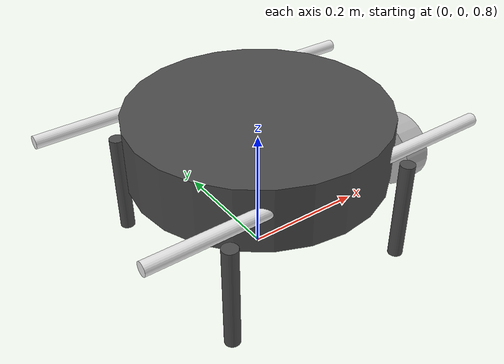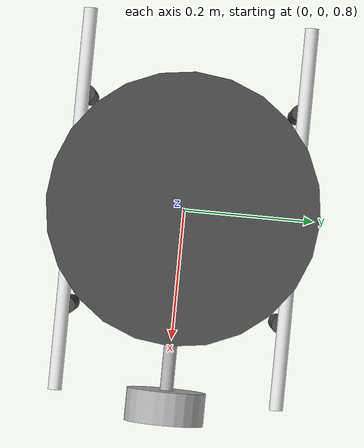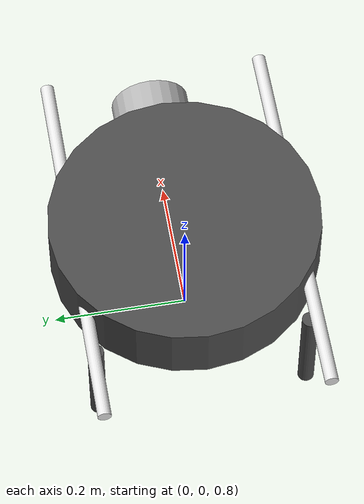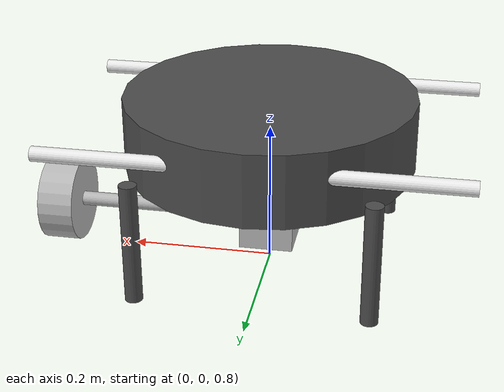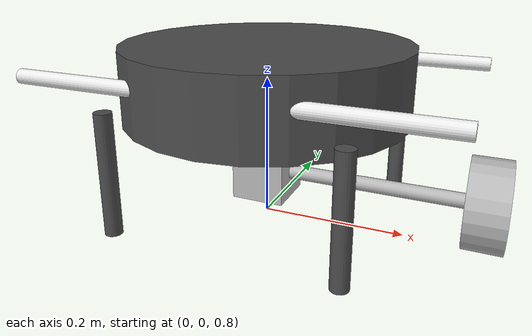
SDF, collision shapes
<?xml version="1.0" encoding="UTF-8"?>
<sdf version='1.9'>
  <model name='f450_base_model'>
    <pose>0 0 1 0 0 0</pose>
    <self_collide>false</self_collide>
    <static>false</static>
    <link name="base_link">
      <inertial>
        <mass>1.7</mass>
        <inertia>
          <ixx>0.01735416666666667</ixx>
          <ixy>0</ixy>
          <ixz>0</ixz>
          <iyy>0.01735416666666667</iyy>
          <iyz>0</iyz>
          <izz>0.034</izz>
        </inertia>
      </inertial>
      <gravity>true</gravity>
      <velocity_decay/>
      <collision name="base_link_collision">
        <pose>
          <x>0</x>
          <y>0</y>
          <z>-0.05</z>
          <roll>0</roll>
          <pitch>0</pitch>
          <yaw>0</yaw>
        </pose>
        <geometry>
          <cylinder>
            <length>0.1</length>
            <radius>0.2</radius>
          </cylinder>
        </geometry>
        <surface>
          <contact>
            <ode>
              <min_depth>0.001</min_depth>
              <max_vel>0.0</max_vel>
            </ode>
          </contact>
          <friction>
            <ode/>
          </friction>
        </surface>
      </collision>
      <visual name="lower_central_board_visual">
        <pose>0 0 -0.05 0 0 0</pose>
        <geometry>
          <mesh>
            <uri>model://f450_brush/meshes/dji_f450_central_bottom.dae</uri>
            <scale>1 1 1</scale>
          </mesh>
        </geometry>
        <material>
          <script>
            <name>Gazebo/DarkGrey</name>
            <uri>file://media/materials/scripts/gazebo.material</uri>
          </script>
        </material>
      </visual>
      <visual name="upper_central_board_visual">
        <pose>0 0 -0.012000000000000004 0 0 0</pose>
        <geometry>
          <mesh>
            <uri>model://f450_brush/meshes/dji_f450_central_top.dae</uri>
            <scale>1 1 1</scale>
          </mesh>
        </geometry>
        <material>
          <script>
            <name>Gazebo/DarkGrey</name>
            <uri>file://media/materials/scripts/gazebo.material</uri>
          </script>
        </material>
      </visual>
      <!-- Arms {-->
      <visual name="front_right_arm_visual">
        <pose>0.045961940777125586 -0.045961940777125586 -0.012000000000000004 0 0 -0.7853981633974483</pose>
        <geometry>
          <mesh>
            <uri>model://f450_brush/meshes/dji_f450_arm.dae</uri>
            <scale>1 1 1</scale>
          </mesh>
        </geometry>
        <material>
          <script>
            <name>Gazebo/White</name>
            <uri>file://media/materials/scripts/gazebo.material</uri>
          </script>
        </material>
      </visual>
      <visual name="front_left_arm_visual">
        <pose>0.045961940777125586 0.045961940777125586 -0.012000000000000004 0 0 0.7853981633974483</pose>
        <geometry>
          <mesh>
            <uri>model://f450_brush/meshes/dji_f450_arm.dae</uri>
            <scale>1 1 1</scale>
          </mesh>
        </geometry>
        <material>
          <script>
            <name>Gazebo/White</name>
            <uri>file://media/materials/scripts/gazebo.material</uri>
          </script>
        </material>
      </visual>
      <visual name="back_right_arm_visual">
        <pose>-0.045961940777125586 -0.045961940777125586 -0.012000000000000004 0 0 -2.356194490192345</pose>
        <geometry>
          <mesh>
            <uri>model://f450_brush/meshes/dji_f450_arm.dae</uri>
            <scale>1 1 1</scale>
          </mesh>
        </geometry>
        <material>
          <script>
            <name>Gazebo/Red</name>
            <uri>file://media/materials/scripts/gazebo.material</uri>
          </script>
        </material>
      </visual>
      <visual name="back_left_arm_visual">
        <pose>-0.045961940777125586 0.045961940777125586 -0.012000000000000004 0 0 2.356194490192345</pose>
        <geometry>
          <mesh>
            <uri>model://f450_brush/meshes/dji_f450_arm.dae</uri>
            <scale>1 1 1</scale>
          </mesh>
        </geometry>
        <material>
          <script>
            <name>Gazebo/Red</name>
            <uri>file://media/materials/scripts/gazebo.material</uri>
          </script>
        </material>
      </visual>
      <!-- Intel NUC {-->
      <visual name="NUC_visual">
        <pose>0 0 0.023 0 0 0</pose>
        <geometry>
          <mesh>
            <uri>model://f450_brush/meshes/dji_f450_nuc.dae</uri>
            <scale>0.001 0.001 0.001</scale>
          </mesh>
        </geometry>
        <material>
          <script>
            <name>Gazebo/DarkGrey</name>
            <uri>file://media/materials/scripts/gazebo.material</uri>
          </script>
        </material>
      </visual>
      <!-- Pixhawk {-->
      <visual name="pixhawk_visual">
        <pose>0 0 -0.0425 0 0 0</pose>
        <geometry>
          <mesh>
            <uri>model://f450_brush/meshes/pixhawk.dae</uri>
            <scale>1 1 1</scale>
          </mesh>
        </geometry>
        <material>
          <script>
            <name>Gazebo/DarkGrey</name>
            <uri>file://media/materials/scripts/gazebo.material</uri>
          </script>
        </material>
      </visual>
      <!-- Legs {-->
      <visual name="front_right_leg_visual">
        <pose>0.15754339084836277 -0.15754339084836277 -0.11000000000000001 0 0 2.356194490192345</pose>
        <geometry>
          <mesh>
            <uri>model://f450_brush/meshes/dji_f450_leg_170mm.dae</uri>
            <scale>0.001 0.001 0.001</scale>
          </mesh>
        </geometry>
        <material>
          <script>
            <name>Gazebo/White</name>
            <uri>file://media/materials/scripts/gazebo.material</uri>
          </script>
        </material>
      </visual>
      <collision name="front_right_leg_collision">
        <pose>0.15754339084836277 -0.15754339084836277 -0.11000000000000001 0 0 2.356194490192345</pose>
        <geometry>
          <cylinder>
            <length>0.17</length>
            <radius>0.012</radius>
          </cylinder>
        </geometry>
        <surface>
          <contact>
            <ode>
              <min_depth>0.001</min_depth>
              <max_vel>0.0</max_vel>
            </ode>
          </contact>
          <friction>
            <ode/>
          </friction>
        </surface>
      </collision>
      <visual name="front_left_leg_visual">
        <pose>0.15754339084836277 0.15754339084836277 -0.11000000000000001 0 0 -2.356194490192345</pose>
        <geometry>
          <mesh>
            <uri>model://f450_brush/meshes/dji_f450_leg_170mm.dae</uri>
            <scale>0.001 0.001 0.001</scale>
          </mesh>
        </geometry>
        <material>
          <script>
            <name>Gazebo/White</name>
            <uri>file://media/materials/scripts/gazebo.material</uri>
          </script>
        </material>
      </visual>
      <collision name="front_left_leg_collision">
        <pose>0.15754339084836277 0.15754339084836277 -0.11000000000000001 0 0 -2.356194490192345</pose>
        <geometry>
          <cylinder>
            <length>0.17</length>
            <radius>0.012</radius>
          </cylinder>
        </geometry>
        <surface>
          <contact>
            <ode>
              <min_depth>0.001</min_depth>
              <max_vel>0.0</max_vel>
            </ode>
          </contact>
          <friction>
            <ode/>
          </friction>
        </surface>
      </collision>
      <visual name="back_right_leg_visual">
        <pose>-0.15754339084836277 -0.15754339084836277 -0.11000000000000001 0 0 0.7853981633974483</pose>
        <geometry>
          <mesh>
            <uri>model://f450_brush/meshes/dji_f450_leg_170mm.dae</uri>
            <scale>0.001 0.001 0.001</scale>
          </mesh>
        </geometry>
        <material>
          <script>
            <name>Gazebo/Red</name>
            <uri>file://media/materials/scripts/gazebo.material</uri>
          </script>
        </material>
      </visual>
      <collision name="back_right_leg_collision">
        <pose>-0.15754339084836277 -0.15754339084836277 -0.11000000000000001 0 0 0.7853981633974483</pose>
        <geometry>
          <cylinder>
            <length>0.17</length>
            <radius>0.012</radius>
          </cylinder>
        </geometry>
        <surface>
          <contact>
            <ode>
              <min_depth>0.001</min_depth>
              <max_vel>0.0</max_vel>
            </ode>
          </contact>
          <friction>
            <ode/>
          </friction>
        </surface>
      </collision>
      <visual name="back_left_leg_visual">
        <pose>-0.15754339084836277 0.15754339084836277 -0.11000000000000001 0 0 -0.7853981633974483</pose>
        <geometry>
          <mesh>
            <uri>model://f450_brush/meshes/dji_f450_leg_170mm.dae</uri>
            <scale>0.001 0.001 0.001</scale>
          </mesh>
        </geometry>
        <material>
          <script>
            <name>Gazebo/Red</name>
            <uri>file://media/materials/scripts/gazebo.material</uri>
          </script>
        </material>
      </visual>
      <collision name="back_left_leg_collision">
        <pose>-0.15754339084836277 0.15754339084836277 -0.11000000000000001 0 0 -0.7853981633974483</pose>
        <geometry>
          <cylinder>
            <length>0.17</length>
            <radius>0.012</radius>
          </cylinder>
        </geometry>
        <surface>
          <contact>
            <ode>
              <min_depth>0.001</min_depth>
              <max_vel>0.0</max_vel>
            </ode>
          </contact>
          <friction>
            <ode/>
          </friction>
        </surface>
      </collision>
      <!-- Motors {-->
      <visual name="front_right_motor_visual">
        <pose>0.1626345596729059 -0.1626345596729059 -0.012000000000000004 0 0 0</pose>
        <geometry>
          <mesh>
            <uri>model://f450_brush/meshes/dji_f450_rotor.dae</uri>
            <scale>1 1 1</scale>
          </mesh>
        </geometry>
        <material>
          <script>
            <name>Gazebo/Black</name>
            <uri>file://media/materials/scripts/gazebo.material</uri>
          </script>
        </material>
      </visual>
      <visual name="front_left_motor_visual">
        <pose>0.1626345596729059 0.1626345596729059 -0.012000000000000004 0 0 0</pose>
        <geometry>
          <mesh>
            <uri>model://f450_brush/meshes/dji_f450_rotor.dae</uri>
            <scale>1 1 1</scale>
          </mesh>
        </geometry>
        <material>
          <script>
            <name>Gazebo/Black</name>
            <uri>file://media/materials/scripts/gazebo.material</uri>
          </script>
        </material>
      </visual>
      <visual name="back_right_motor_visual">
        <pose>-0.1626345596729059 -0.1626345596729059 -0.012000000000000004 0 0 0</pose>
        <geometry>
          <mesh>
            <uri>model://f450_brush/meshes/dji_f450_rotor.dae</uri>
            <scale>1 1 1</scale>
          </mesh>
        </geometry>
        <material>
          <script>
            <name>Gazebo/Black</name>
            <uri>file://media/materials/scripts/gazebo.material</uri>
          </script>
        </material>
      </visual>
      <visual name="back_left_motor_visual">
        <pose>-0.1626345596729059 0.1626345596729059 -0.012000000000000004 0 0 0</pose>
        <geometry>
          <mesh>
            <uri>model://f450_brush/meshes/dji_f450_rotor.dae</uri>
            <scale>1 1 1</scale>
          </mesh>
        </geometry>
        <material>
          <script>
            <name>Gazebo/Black</name>
            <uri>file://media/materials/scripts/gazebo.material</uri>
          </script>
        </material>
      </visual>
      <!-- Battery mount and battery {-->
      <visual name="battery_mount_visual">
        <pose>0 0 -0.078 0 0 1.5707963267948966</pose>
        <geometry>
          <mesh>
            <uri>model://f450_brush/meshes/dji_f450_battery_mount.dae</uri>
            <scale>0.001 0.001 0.001</scale>
          </mesh>
        </geometry>
        <material>
          <script>
            <name>Gazebo/DarkGrey</name>
            <uri>file://media/materials/scripts/gazebo.material</uri>
          </script>
        </material>
      </visual>
      <visual name="battery_visual">
        <pose>0 0 -0.077 0 0 1.5707963267948966</pose>
        <geometry>
          <box>
            <size>0.13 0.042 0.044</size>
          </box>
        </geometry>
        <material>
          <script>
            <name>Gazebo/Grey</name>
            <uri>file://media/materials/scripts/gazebo.material</uri>
          </script>
        </material>
      </visual>
      <sensor name="air_pressure_sensor" type="air_pressure">
        <always_on>1</always_on>
        <update_rate>50</update_rate>
        <air_pressure>
          <pressure>
            <noise type="gaussian">
              <mean>0</mean>
              <stddev>0.01</stddev>
            </noise>
          </pressure>
        </air_pressure>
      </sensor>
      <sensor name="imu_sensor" type="imu">
        <always_on>1</always_on>
        <update_rate>250</update_rate>
        <imu>
          <angular_velocity>
            <x>
              <noise type="gaussian">
                <mean>0</mean>
                <stddev>0.00018665</stddev>
                <dynamic_bias_stddev>3.8785e-05</dynamic_bias_stddev>
                <dynamic_bias_correlation_time>1000</dynamic_bias_correlation_time>
              </noise>
            </x>
            <y>
              <noise type="gaussian">
                <mean>0</mean>
                <stddev>0.00018665</stddev>
                <dynamic_bias_stddev>3.8785e-05</dynamic_bias_stddev>
                <dynamic_bias_correlation_time>1000</dynamic_bias_correlation_time>
              </noise>
            </y>
            <z>
              <noise type="gaussian">
                <mean>0</mean>
                <stddev>0.00018665</stddev>
                <dynamic_bias_stddev>3.8785e-05</dynamic_bias_stddev>
                <dynamic_bias_correlation_time>1000</dynamic_bias_correlation_time>
              </noise>
            </z>
          </angular_velocity>
          <linear_acceleration>
            <x>
              <noise type="gaussian">
                <mean>0</mean>
                <stddev>0.00186</stddev>
                <dynamic_bias_stddev>0.006</dynamic_bias_stddev>
                <dynamic_bias_correlation_time>300</dynamic_bias_correlation_time>
              </noise>
            </x>
            <y>
              <noise type="gaussian">
                <mean>0</mean>
                <stddev>0.00186</stddev>
                <dynamic_bias_stddev>0.006</dynamic_bias_stddev>
                <dynamic_bias_correlation_time>300</dynamic_bias_correlation_time>
              </noise>
            </y>
            <z>
              <noise type="gaussian">
                <mean>0</mean>
                <stddev>0.00186</stddev>
                <dynamic_bias_stddev>0.006</dynamic_bias_stddev>
                <dynamic_bias_correlation_time>300</dynamic_bias_correlation_time>
              </noise>
            </z>
          </linear_acceleration>
        </imu>
      </sensor>
      <sensor name="navsat_sensor" type="navsat">
        <always_on>1</always_on>
        <update_rate>30</update_rate>
      </sensor>
    </link>

    <link name='connector'>
        <pose>0 0 -0.1335 0 0 0</pose>
        <inertial>
          <mass>0.2</mass>
          <inertia>
            <ixx>1.875e-4</ixx>
            <ixy>0</ixy>
            <ixz>0</ixz>
            <iyy>1.875e-4</iyy>
            <iyz>0</iyz>
            <izz>1.875e-4</izz>
          </inertia>
        </inertial>
        <collision name='collision'>
        <geometry>
            <box>
            <size>.075 .075 .075</size>
            </box>
        </geometry>
        </collision>

        <visual name='visual'>
        <geometry>
            <box>
            <size>.075 .075 .075</size>
            </box>
        </geometry>
        </visual>
    </link>

    <joint name="connector_joint" type="revolute">
      <parent>base_link</parent>
      <child>connector</child>
      <axis>
        <xyz>0 0 1</xyz>
        <limit>
          <lower>0</lower>
          <upper>0</upper>
        </limit>
        <dynamics>
          <spring_reference>0</spring_reference>
          <spring_stiffness>0</spring_stiffness>
        </dynamics>
      </axis>
    </joint>

    <link name="brush_shaft">
      <pose>0.15 0 -0.1335 0 1.5707 0</pose>
      <inertial>
        <mass>0.01</mass>
        <inertia>
            <ixx>7.525e-5</ixx>
            <ixy>0</ixy>
            <ixz>0</ixz>
            <iyy>7.525e-5</iyy>
            <iyz>0</iyz>
            <izz>5e-7</izz>
          </inertia>
      </inertial>
      <collision name="collision">
          <geometry>
          <cylinder>
              <radius>.01</radius>
              <length>0.3</length>
          </cylinder>
          </geometry>
      </collision>
      <visual name="visual">
          <geometry>
          <cylinder>
              <radius>.01</radius>
              <length>0.3</length>
          </cylinder>
          </geometry>
      </visual>
    </link>

    <joint name="brush_shaft_joint" type="revolute">
      <parent>connector</parent>
      <child>brush_shaft</child>
      <axis>
        <xyz>0 0 1</xyz>
        <limit>
          <lower>-1e+16</lower>
          <upper>1e+16</upper>
        </limit>
        <dynamics>
          <spring_reference>0</spring_reference>
          <spring_stiffness>0</spring_stiffness>
        </dynamics>
      </axis>
    </joint>

    <link name="brush">
      <pose>0.3 0 -0.1335 0 1.5707 0</pose>
      <inertial>
        <mass>0.1</mass>
        <inertia>
            <ixx>1.108e-4</ixx>
            <ixy>0</ixy>
            <ixz>0</ixz>
            <iyy>1.108e-4</iyy>
            <iyz>0</iyz>
            <izz>1.8e-4</izz>
          </inertia>
      </inertial>
      <collision name="collision">
          <geometry>
          <cylinder>
              <radius>.06</radius>
              <length>0.05</length>
          </cylinder>
          </geometry>
      </collision>
      <visual name="visual">
          <geometry>
          <box>
            <size>.1 .00075 .0075</size>
          </box>
          </geometry>
      </visual>
    </link>

    <joint name="brush_joint" type="revolute">
      <parent>brush_shaft</parent>
      <child>brush</child>
      <axis>
        <xyz>0 1 0</xyz>
        <limit>
          <lower>0</lower>
          <upper>0</upper>
        </limit>
        <dynamics>
          <spring_reference>0</spring_reference>
          <spring_stiffness>0</spring_stiffness>
        </dynamics>
      </axis>
    </joint>

    <link name="prop_0_link">
      <gravity>true</gravity>
      <self_collide>false</self_collide>
      <velocity_decay/>
      <pose>0.1626345596729059 -0.1626345596729059 0.011499999999999996 0 0 0</pose>
      <inertial>
        <mass>0.005</mass>
        <inertia>
          <ixx>0.0001</ixx>
          <ixy>0</ixy>
          <ixz>0</ixz>
          <iyy>0.0001</iyy>
          <iyz>0</iyz>
          <izz>0.0001</izz>
        </inertia>
      </inertial>
      <visual name="prop_0_visual">
        <pose>0 0 0 0 0 0</pose>
        <geometry>
          <mesh>
            <uri>model://f450_brush/meshes/dji_f450_prop.dae</uri>
            <scale>1 1 1</scale>
          </mesh>
        </geometry>
        <material>
          <script>
            <name>Gazebo/White</name>
            <uri>file://media/materials/scripts/gazebo.material</uri>
          </script>
        </material>
      </visual>
      <collision name="prop_0_link_collision">
        <pose>0 0 0 0 1.5707963267948966 0</pose>
        <geometry>
          <cylinder>
            <length>0.236</length>
            <radius>0.01</radius>
          </cylinder>
        </geometry>
        <surface>
          <contact>
            <ode>
              <min_depth>0.001</min_depth>
              <max_vel>0.0</max_vel>
            </ode>
          </contact>
          <friction>
            <ode/>
          </friction>
        </surface>
      </collision>
    </link>
    <joint name="prop_0_joint" type="revolute">
      <parent>base_link</parent>
      <child>prop_0_link</child>
      <axis>
        <xyz>0 0 1</xyz>
        <limit>
          <lower>-1e+16</lower>
          <upper>1e+16</upper>
        </limit>
        <dynamics>
          <spring_reference>0</spring_reference>
          <spring_stiffness>0</spring_stiffness>
        </dynamics>
      </axis>
    </joint>
    <link name="prop_1_link">
      <gravity>true</gravity>
      <self_collide>false</self_collide>
      <velocity_decay/>
      <pose>-0.1626345596729059 0.1626345596729059 0.011499999999999996 0 0 0</pose>
      <inertial>
        <mass>0.005</mass>
        <inertia>
          <ixx>0.0001</ixx>
          <ixy>0</ixy>
          <ixz>0</ixz>
          <iyy>0.0001</iyy>
          <iyz>0</iyz>
          <izz>0.0001</izz>
        </inertia>
      </inertial>
      <visual name="prop_1_visual">
        <pose>0 0 0 0 0 0</pose>
        <geometry>
          <mesh>
            <uri>model://f450_brush/meshes/dji_f450_prop.dae</uri>
            <scale>1 1 1</scale>
          </mesh>
        </geometry>
        <material>
          <script>
            <name>Gazebo/White</name>
            <uri>file://media/materials/scripts/gazebo.material</uri>
          </script>
        </material>
      </visual>
      <collision name="prop_1_link_collision">
        <pose>0 0 0 0 1.5707963267948966 0</pose>
        <geometry>
          <cylinder>
            <length>0.236</length>
            <radius>0.01</radius>
          </cylinder>
        </geometry>
        <surface>
          <contact>
            <ode>
              <min_depth>0.001</min_depth>
              <max_vel>0.0</max_vel>
            </ode>
          </contact>
          <friction>
            <ode/>
          </friction>
        </surface>
      </collision>
    </link>
    <joint name="prop_1_joint" type="revolute">
      <parent>base_link</parent>
      <child>prop_1_link</child>
      <axis>
        <xyz>0 0 1</xyz>
        <limit>
          <lower>-1e+16</lower>
          <upper>1e+16</upper>
        </limit>
        <dynamics>
          <spring_reference>0</spring_reference>
          <spring_stiffness>0</spring_stiffness>
        </dynamics>
      </axis>
    </joint>
    <link name="prop_2_link">
      <gravity>true</gravity>
      <self_collide>false</self_collide>
      <velocity_decay/>
      <pose>0.1626345596729059 0.1626345596729059 0.011499999999999996 0 0 0</pose>
      <inertial>
        <mass>0.005</mass>
        <inertia>
          <ixx>0.0001</ixx>
          <ixy>0</ixy>
          <ixz>0</ixz>
          <iyy>0.0001</iyy>
          <iyz>0</iyz>
          <izz>0.0001</izz>
        </inertia>
      </inertial>
      <visual name="prop_2_visual">
        <pose>0 0 0 0 0 0</pose>
        <geometry>
          <mesh>
            <uri>model://f450_brush/meshes/dji_f450_prop.dae</uri>
            <scale>-1 1 1</scale>
          </mesh>
        </geometry>
        <material>
          <script>
            <name>Gazebo/White</name>
            <uri>file://media/materials/scripts/gazebo.material</uri>
          </script>
        </material>
      </visual>
      <collision name="prop_2_link_collision">
        <pose>0 0 0 0 1.5707963267948966 0</pose>
        <geometry>
          <cylinder>
            <length>0.236</length>
            <radius>0.01</radius>
          </cylinder>
        </geometry>
        <surface>
          <contact>
            <ode>
              <min_depth>0.001</min_depth>
              <max_vel>0.0</max_vel>
            </ode>
          </contact>
          <friction>
            <ode/>
          </friction>
        </surface>
      </collision>
    </link>
    <joint name="prop_2_joint" type="revolute">
      <parent>base_link</parent>
      <child>prop_2_link</child>
      <axis>
        <xyz>0 0 1</xyz>
        <limit>
          <lower>-1e+16</lower>
          <upper>1e+16</upper>
        </limit>
        <dynamics>
          <spring_reference>0</spring_reference>
          <spring_stiffness>0</spring_stiffness>
        </dynamics>
      </axis>
    </joint>
    <link name="prop_3_link">
      <gravity>true</gravity>
      <self_collide>false</self_collide>
      <velocity_decay/>
      <pose>-0.1626345596729059 -0.1626345596729059 0.011499999999999996 0 0 0</pose>
      <inertial>
        <mass>0.005</mass>
        <inertia>
          <ixx>0.0001</ixx>
          <ixy>0</ixy>
          <ixz>0</ixz>
          <iyy>0.0001</iyy>
          <iyz>0</iyz>
          <izz>0.0001</izz>
        </inertia>
      </inertial>
      <visual name="prop_3_visual">
        <pose>0 0 0 0 0 0</pose>
        <geometry>
          <mesh>
            <uri>model://f450_brush/meshes/dji_f450_prop.dae</uri>
            <scale>-1 1 1</scale>
          </mesh>
        </geometry>
        <material>
          <script>
            <name>Gazebo/White</name>
            <uri>file://media/materials/scripts/gazebo.material</uri>
          </script>
        </material>
      </visual>
      <collision name="prop_3_link_collision">
        <pose>0 0 0 0 1.5707963267948966 0</pose>
        <geometry>
          <cylinder>
            <length>0.236</length>
            <radius>0.01</radius>
          </cylinder>
        </geometry>
        <surface>
          <contact>
            <ode>
              <min_depth>0.001</min_depth>
              <max_vel>0.0</max_vel>
            </ode>
          </contact>
          <friction>
            <ode/>
          </friction>
        </surface>
      </collision>
    </link>
    <joint name="prop_3_joint" type="revolute">
      <parent>base_link</parent>
      <child>prop_3_link</child>
      <axis>
        <xyz>0 0 1</xyz>
        <limit>
          <lower>-1e+16</lower>
          <upper>1e+16</upper>
        </limit>
        <dynamics>
          <spring_reference>0</spring_reference>
          <spring_stiffness>0</spring_stiffness>
        </dynamics>
      </axis>
    </joint>
  </model>
</sdf>
